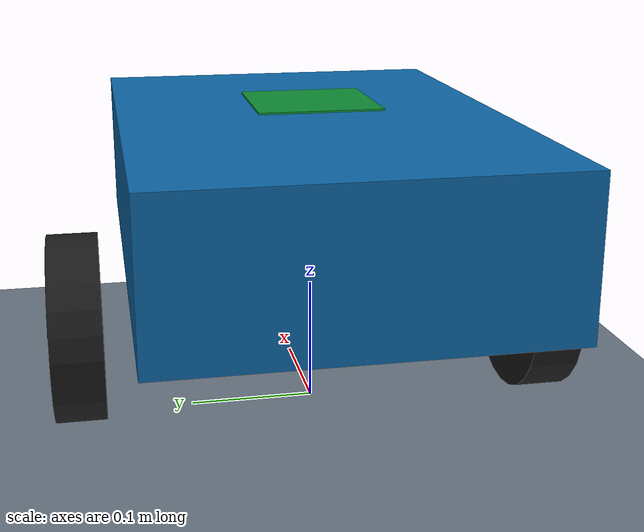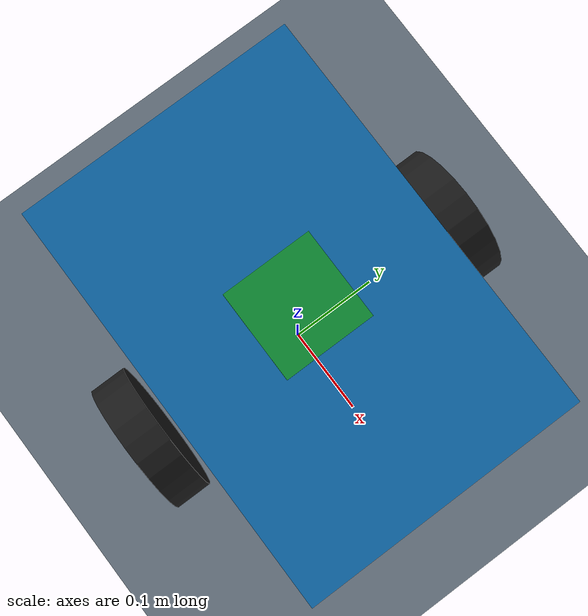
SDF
<?xml version="1.0"?><sdf version="1.9"><world name="warehouse">
    <physics name="physics" type="ignored"><max_step_size>.001</max_step_size><real_time_factor>1</real_time_factor></physics>
    <plugin filename="gz-sim-physics-system" name="gz::sim::systems::Physics"/>
    <plugin filename="gz-sim-user-commands-system" name="gz::sim::systems::UserCommands"/>
    <plugin filename="gz-sim-scene-broadcaster-system" name="gz::sim::systems::SceneBroadcaster"/>
    <gravity>0 0 -9.81</gravity>
    <light name="sun" type="directional"><pose>0 0 10 0 0 0</pose><diffuse>1 1 1 1</diffuse><direction>-.5 .1 -1</direction></light>
    <model name="floor"><static>true</static><link name="link"><collision name="collision"><geometry><plane><normal>0 0 1</normal><size>30 20</size></plane></geometry><surface><friction><ode><mu>0.8</mu><mu2>0.8</mu2></ode></friction></surface></collision><visual name="visual"><geometry><plane><normal>0 0 1</normal><size>30 20</size></plane></geometry><material><diffuse>.4 .45 .5 1</diffuse></material></visual></link></model>
    <model name="rover"><link name="base_link"><pose>0 0 .18 0 0 0</pose><inertial><mass>11.4</mass><inertia><ixx>.09918</ixx><iyy>.19760</iyy><izz>.26942</izz></inertia></inertial>
    <collision name="body"><geometry><box><size>.44 .30 .12</size></box></geometry></collision><visual name="body"><geometry><box><size>.44 .30 .12</size></box></geometry><material><diffuse>.05 .4 .65 1</diffuse></material></visual>
    <visual name="virtual_pcb"><pose>0 0 .071 0 0 0</pose><geometry><box><size>.096 .096 .0016</size></box></geometry><material><diffuse>.05 .55 .2 1</diffuse></material></visual></link>
    <link name="caster"><pose>-.17 0 .035 0 0 0</pose><inertial><mass>.1</mass><inertia><ixx>.0001</ixx><iyy>.0001</iyy><izz>.0001</izz></inertia></inertial><collision name="collision"><geometry><sphere><radius>.035</radius></sphere></geometry><surface><friction><ode><mu>.001</mu><mu2>.001</mu2></ode></friction></surface></collision></link>
    <joint name="caster_joint" type="fixed"><parent>base_link</parent><child>caster</child></joint>
    <link name="left_wheel"><pose>0 0.19 .075 1.57079632679 0 0</pose>
        <inertial><mass>.25</mass><inertia><ixx>.0004</ixx><iyy>.0004</iyy><izz>.0007</izz></inertia></inertial>
        <collision name="collision"><geometry><cylinder><radius>.075</radius><length>.04</length></cylinder></geometry><surface><friction><ode><mu>1</mu><mu2>1</mu2></ode></friction></surface></collision>
        <visual name="visual"><geometry><cylinder><radius>.075</radius><length>.04</length></cylinder></geometry><material><diffuse>.1 .1 .1 1</diffuse></material></visual></link>
        <joint name="left_wheel_joint" type="revolute"><parent>base_link</parent><child>left_wheel</child><axis><xyz expressed_in="__model__">0 1 0</xyz><limit><lower>-1e16</lower><upper>1e16</upper></limit><dynamics><damping>.003</damping></dynamics></axis></joint>
        <plugin filename="gz-sim-apply-joint-force-system" name="gz::sim::systems::ApplyJointForce"><joint_name>left_wheel_joint</joint_name></plugin><link name="right_wheel"><pose>0 -0.19 .075 1.57079632679 0 0</pose>
        <inertial><mass>.25</mass><inertia><ixx>.0004</ixx><iyy>.0004</iyy><izz>.0007</izz></inertia></inertial>
        <collision name="collision"><geometry><cylinder><radius>.075</radius><length>.04</length></cylinder></geometry><surface><friction><ode><mu>1</mu><mu2>1</mu2></ode></friction></surface></collision>
        <visual name="visual"><geometry><cylinder><radius>.075</radius><length>.04</length></cylinder></geometry><material><diffuse>.1 .1 .1 1</diffuse></material></visual></link>
        <joint name="right_wheel_joint" type="revolute"><parent>base_link</parent><child>right_wheel</child><axis><xyz expressed_in="__model__">0 1 0</xyz><limit><lower>-1e16</lower><upper>1e16</upper></limit><dynamics><damping>.003</damping></dynamics></axis></joint>
        <plugin filename="gz-sim-apply-joint-force-system" name="gz::sim::systems::ApplyJointForce"><joint_name>right_wheel_joint</joint_name></plugin><plugin filename="gz-sim-odometry-publisher-system" name="gz::sim::systems::OdometryPublisher"><odom_frame>odom</odom_frame><robot_base_frame>base_link</robot_base_frame><odom_publish_frequency>50</odom_publish_frequency><dimensions>3</dimensions><odom_topic>/model/rover/odometry</odom_topic></plugin>
    <plugin filename="gz-sim-joint-state-publisher-system" name="gz::sim::systems::JointStatePublisher"/>
    </model></world></sdf>
